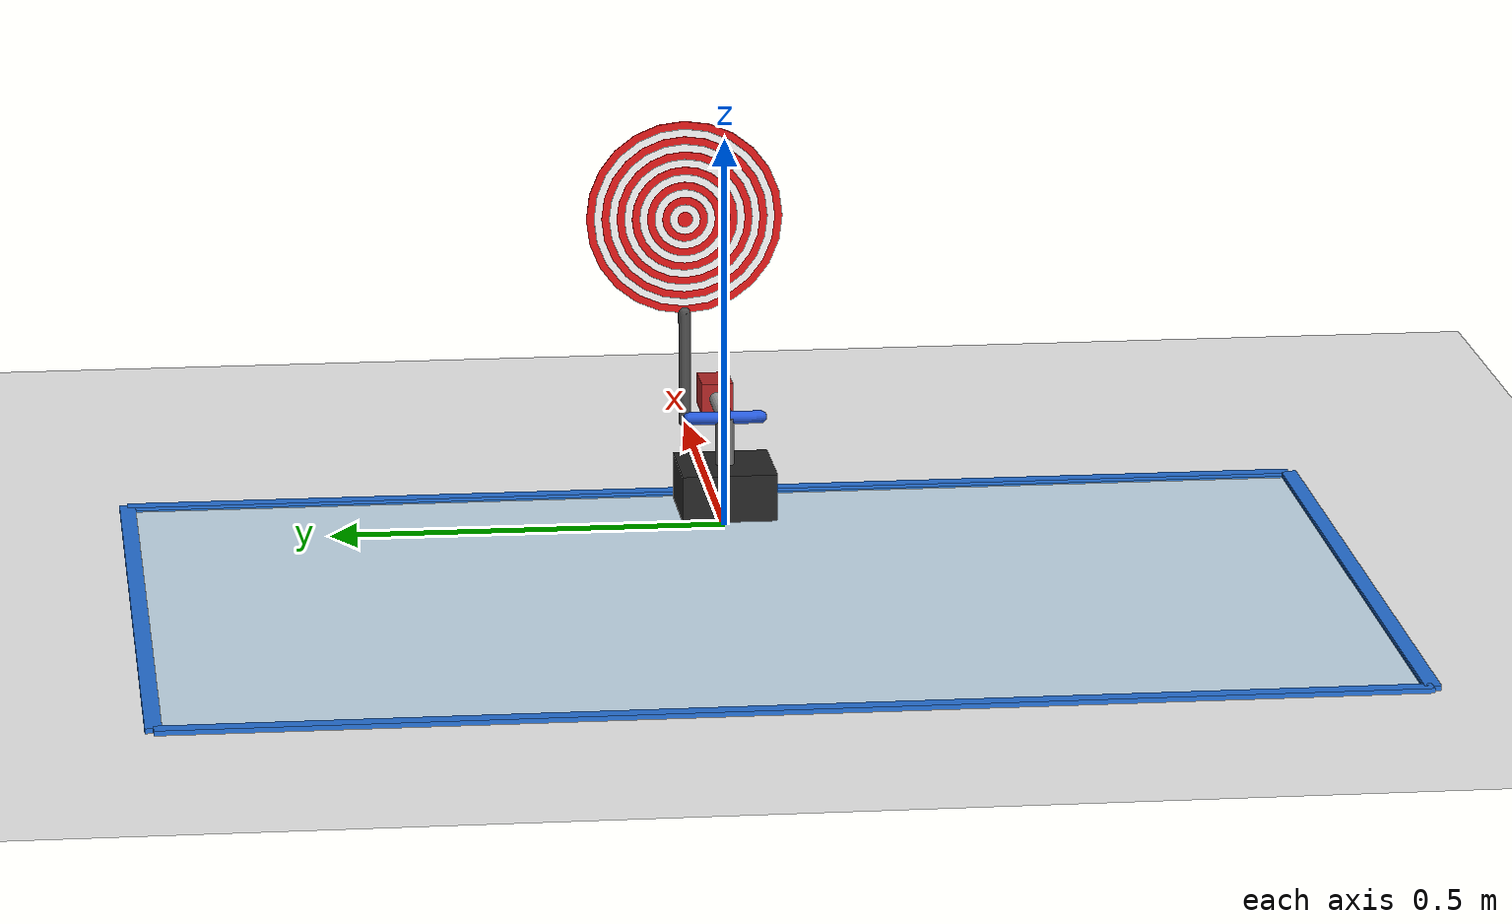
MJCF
<mujoco model="two_axis_gimbal_clean">
    <compiler angle="radian"/>
    <option timestep="0.01" gravity="0 0 -9.81"/>

    <default>
        <joint damping="0.3" armature="0.01" limited="true"/>
        <geom rgba="0.7 0.7 0.7 1"/>
        <motor ctrllimited="true" ctrlrange="-1 1"/>
    </default>

    <worldbody>
        <!-- 地面 -->
        <geom name="ground" type="plane" size="2 2 0.1" rgba="0.95 0.95 0.95 1"/>
        <!-- 底座活动范围：slide_x in [-0.8, 0.15], slide_y in [-0.75, 0.75] -->
        <geom name="base_motion_zone_fill"
              type="box"
              pos="-0.325 0 0.001"
              size="0.475 0.75 0.001"
              rgba="0.2 0.65 0.95 0.12"
              contype="0"
              conaffinity="0"/>
        <geom name="base_motion_zone_top"
              type="box"
              pos="-0.325 0.75 0.003"
              size="0.475 0.01 0.003"
              rgba="0.15 0.45 0.85 0.95"
              contype="0"
              conaffinity="0"/>
        <geom name="base_motion_zone_bottom"
              type="box"
              pos="-0.325 -0.75 0.003"
              size="0.475 0.01 0.003"
              rgba="0.15 0.45 0.85 0.95"
              contype="0"
              conaffinity="0"/>
        <geom name="base_motion_zone_left"
              type="box"
              pos="-0.8 0 0.003"
              size="0.01 0.75 0.003"
              rgba="0.15 0.45 0.85 0.95"
              contype="0"
              conaffinity="0"/>
        <geom name="base_motion_zone_right"
              type="box"
              pos="0.15 0 0.003"
              size="0.01 0.75 0.003"
              rgba="0.15 0.45 0.85 0.95"
              contype="0"
              conaffinity="0"/>
        <!-- 底座 -->
        <body name="base" pos="0 0 0.05">
            <inertial pos="0 0 0" mass="0.2" diaginertia="0.001 0.001 0.001"/>
            <!-- Keep the turret in front of the target plane with a fixed stand-off. -->
            <joint name="slide_x" type="slide" axis="1 0 0" range="-0.8 0.15" damping="5" armature="0.1"/>
            <joint name="slide_y" type="slide" axis="0 1 0" range="-0.75 0.75" damping="5" armature="0.1"/>
            <body name="chassis_body" pos="0 0 0">
                <joint name="base_yaw_joint" type="hinge" axis="0 0 1" range="-3.1416 3.1416" damping="4" armature="0.1"/>
                <geom name="base_geom" type="box" size="0.06 0.06 0.03" rgba="0.15 0.15 0.15 1"/>
                <!-- yaw轴：在底座中心 -->
                <body name="yaw_body" pos="0 0 0.03">
                    <joint name="yaw_joint" type="hinge" axis="0 0 1" range="-3.1416 3.1416"/>
                    <!-- 中心立柱 -->
                    <geom name="yaw_column" type="cylinder" pos="0 0 0.03" size="0.012 0.03" rgba="0.45 0.45 0.45 1"/>
                    <!-- pitch轴：也在中心附近 -->
                    <body name="pitch_body" pos="0 0 0.06">
                        <joint name="pitch_joint" type="hinge" axis="0 -1 0" range="0 1.5708"/>
                        <!-- pitch轴横杆 -->
                        <geom name="pitch_axis_bar" type="capsule"
                              fromto="0 -0.045 0 0 0.045 0"
                              size="0.008"
                              rgba="0.15 0.35 0.85 1"/>
                        <!-- 相机支臂 -->
                        <geom name="camera_arm" type="capsule"
                              fromto="0 0 0 0.12 0 0"
                              size="0.01"
                              rgba="0.7 0.7 0.7 1"/>
                        <!-- 相机本体 -->
                        <body name="camera_body" pos="0.12 0 0">
                            <geom name="camera_box" type="box"
                                  size="0.03 0.02 0.02"
                                  rgba="0.7 0.15 0.15 1"/>
                            <!-- 镜头 -->
                            <geom name="camera_lens" type="cylinder"
                                  pos="0.035 0 0"
                                  size="0.009 0.015"
                                  euler="0 1.5708 0"
                                  rgba="0.08 0.08 0.08 1"/>
                            <!-- 机载相机（沿 +x 朝前，放在镜头前方） -->
                            <camera name="turret_cam" pos="0.06 0 0" xyaxes="0 -1 0 0 0 1" fovy="60"/>
                            <!-- 前端标记 -->
                            <site name="tip" pos="0.05 0 0" size="0.006" rgba="1 0 0 1"/>
                        </body>
                    </body>
                </body>
            </body>
        </body>

        <!-- 靶子 -->
        <body name="target" pos="0.5 0 0.28">
            <!-- 支架（从地面到靶底） -->
            <geom name="target_stand" type="capsule"
                  fromto="0 0 -0.28  0 0 -0.13"
                  size="0.008"
                  rgba="0.3 0.3 0.3 1"/>
            <!-- 靶面：13层圆盘叠加 = 6红环 + 6白间隔 + 红靶心 -->
            <geom name="ring_r1" type="cylinder" euler="0 1.5708 0" size="0.13 0.001" pos="-0.001 0 0"  rgba="0.9 0.1 0.1 1" contype="0" conaffinity="0"/>
            <geom name="ring_w1" type="cylinder" euler="0 1.5708 0" size="0.12 0.001" pos="-0.002 0 0"  rgba="1 1 1 1"       contype="0" conaffinity="0"/>
            <geom name="ring_r2" type="cylinder" euler="0 1.5708 0" size="0.11 0.001" pos="-0.003 0 0"  rgba="0.9 0.1 0.1 1" contype="0" conaffinity="0"/>
            <geom name="ring_w2" type="cylinder" euler="0 1.5708 0" size="0.10 0.001" pos="-0.004 0 0"  rgba="1 1 1 1"       contype="0" conaffinity="0"/>
            <geom name="ring_r3" type="cylinder" euler="0 1.5708 0" size="0.09 0.001" pos="-0.005 0 0"  rgba="0.9 0.1 0.1 1" contype="0" conaffinity="0"/>
            <geom name="ring_w3" type="cylinder" euler="0 1.5708 0" size="0.08 0.001" pos="-0.006 0 0"  rgba="1 1 1 1"       contype="0" conaffinity="0"/>
            <geom name="ring_r4" type="cylinder" euler="0 1.5708 0" size="0.07 0.001" pos="-0.007 0 0"  rgba="0.9 0.1 0.1 1" contype="0" conaffinity="0"/>
            <geom name="ring_w4" type="cylinder" euler="0 1.5708 0" size="0.06 0.001" pos="-0.008 0 0"  rgba="1 1 1 1"       contype="0" conaffinity="0"/>
            <geom name="ring_r5" type="cylinder" euler="0 1.5708 0" size="0.05 0.001" pos="-0.009 0 0"  rgba="0.9 0.1 0.1 1" contype="0" conaffinity="0"/>
            <geom name="ring_w5" type="cylinder" euler="0 1.5708 0" size="0.04 0.001" pos="-0.010 0 0"  rgba="1 1 1 1"       contype="0" conaffinity="0"/>
            <geom name="ring_r6" type="cylinder" euler="0 1.5708 0" size="0.03 0.001" pos="-0.011 0 0"  rgba="0.9 0.1 0.1 1" contype="0" conaffinity="0"/>
            <geom name="ring_w6" type="cylinder" euler="0 1.5708 0" size="0.02 0.001" pos="-0.012 0 0"  rgba="1 1 1 1"       contype="0" conaffinity="0"/>
            <geom name="bullseye" type="cylinder" euler="0 1.5708 0" size="0.01 0.001" pos="-0.013 0 0"  rgba="0.9 0.1 0.1 1" contype="0" conaffinity="0"/>
            <!-- 靶心标记点 -->
            <site name="bullseye_center" pos="0 0 0" size="0.003" rgba="0 0 0 0"/>
        </body>
    </worldbody>

    <actuator>
        <motor name="slide_x_motor" joint="slide_x" gear="5" ctrllimited="true" ctrlrange="-1 1"/>
        <motor name="slide_y_motor" joint="slide_y" gear="5" ctrllimited="true" ctrlrange="-1 1"/>
        <motor name="base_yaw_motor" joint="base_yaw_joint" gear="1"/>
        <motor name="yaw_motor" joint="yaw_joint" gear="1"/>
        <motor name="pitch_motor" joint="pitch_joint" gear="1"/>
    </actuator>
</mujoco>
